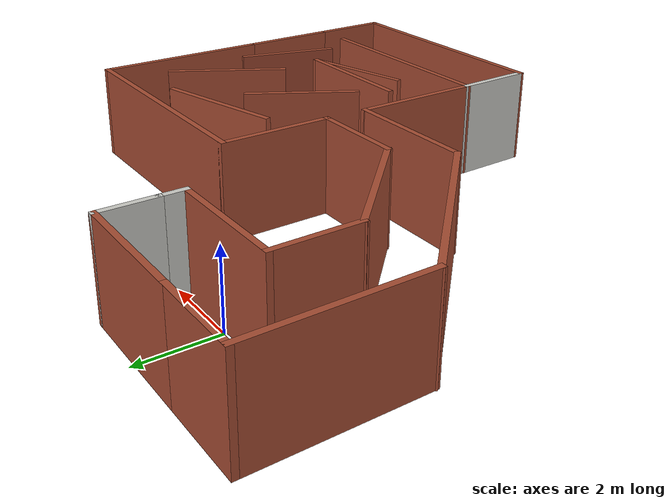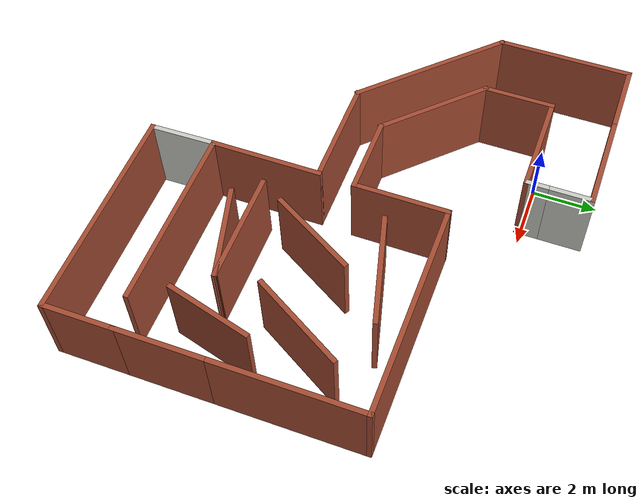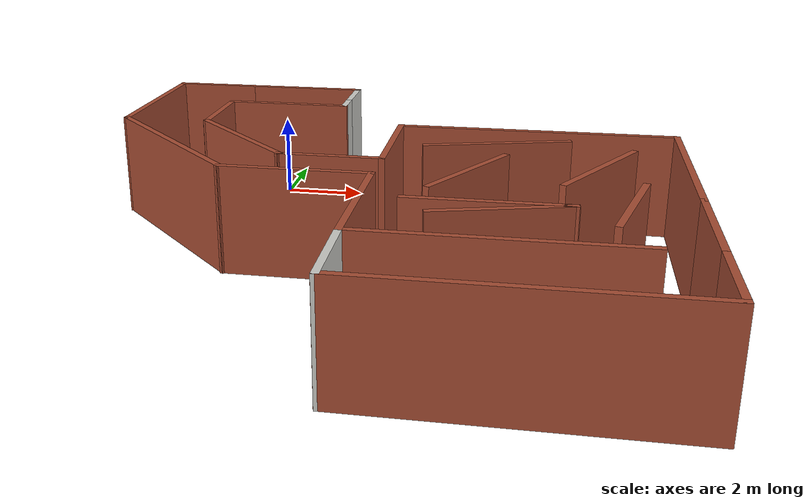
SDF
<?xml version='1.0'?>
<sdf version='1.6'>
  <model name='maze'>
    <pose frame=''>3.18226 -4.70353 0 0 -0 0</pose>
    <link name='Wall_12'>
      <collision name='Wall_12_Collision'>
        <geometry>
          <box>
            <size>3.25 0.15 2.5</size>
          </box>
        </geometry>
        <pose frame=''>0 0 1.25 0 -0 0</pose>
      </collision>
      <visual name='Wall_12_Visual'>
        <pose frame=''>0 0 1.25 0 -0 0</pose>
        <geometry>
          <box>
            <size>3.25 0.15 2.5</size>
          </box>
        </geometry>
        <material>
          <script>
            <uri>file://media/materials/scripts/gazebo.material</uri>
            <name>Gazebo/Bricks</name>
          </script>
          <ambient>1 1 1 1</ambient>
        </material>
        <meta>
          <layer>0</layer>
        </meta>
      </visual>
      <pose frame=''>-3.13226 4.57353 0 0 -0 3.14159</pose>
    </link>
    <link name='Wall_14'>
      <collision name='Wall_14_Collision'>
        <geometry>
          <box>
            <size>2.25 0.15 2.5</size>
          </box>
        </geometry>
        <pose frame=''>0 0 1.25 0 -0 0</pose>
      </collision>
      <visual name='Wall_14_Visual'>
        <pose frame=''>0 0 1.25 0 -0 0</pose>
        <geometry>
          <box>
            <size>2.25 0.15 2.5</size>
          </box>
        </geometry>
        <material>
          <script>
            <uri>file://media/materials/scripts/gazebo.material</uri>
            <name>Gazebo/Bricks</name>
          </script>
          <ambient>1 1 1 1</ambient>
        </material>
        <meta>
          <layer>0</layer>
        </meta>
      </visual>
      <pose frame=''>-4.68226 3.52353 0 0 0 -1.5708</pose>
    </link>
    <link name='Wall_16'>
      <collision name='Wall_16_Collision'>
        <geometry>
          <box>
            <size>2.25 0.15 2.5</size>
          </box>
        </geometry>
        <pose frame=''>0 0 1.25 0 -0 0</pose>
      </collision>
      <visual name='Wall_16_Visual'>
        <pose frame=''>0 0 1.25 0 -0 0</pose>
        <geometry>
          <box>
            <size>2.25 0.15 2.5</size>
          </box>
        </geometry>
        <material>
          <script>
            <uri>file://media/materials/scripts/gazebo.material</uri>
            <name>Gazebo/Bricks</name>
          </script>
          <ambient>1 1 1 1</ambient>
        </material>
        <meta>
          <layer>0</layer>
        </meta>
      </visual>
      <pose frame=''>-5.73226 6.52353 0 0 -0 3.14159</pose>
    </link>
    <link name='Wall_17'>
      <collision name='Wall_17_Collision'>
        <geometry>
          <box>
            <size>4.25 0.15 2.5</size>
          </box>
        </geometry>
        <pose frame=''>0 0 1.25 0 -0 0</pose>
      </collision>
      <visual name='Wall_17_Visual'>
        <pose frame=''>0 0 1.25 0 -0 0</pose>
        <geometry>
          <box>
            <size>4.25 0.15 2.5</size>
          </box>
        </geometry>
        <material>
          <script>
            <uri>file://media/materials/scripts/gazebo.material</uri>
            <name>Gazebo/Bricks</name>
          </script>
          <ambient>1 1 1 1</ambient>
        </material>
        <meta>
          <layer>0</layer>
        </meta>
      </visual>
      <pose frame=''>-6.78226 4.47353 0 0 0 -1.5708</pose>
    </link>
    <link name='Wall_19'>
      <collision name='Wall_19_Collision'>
        <geometry>
          <box>
            <size>5.25 0.15 2.5</size>
          </box>
        </geometry>
        <pose frame=''>0 0 1.25 0 -0 0</pose>
      </collision>
      <visual name='Wall_19_Visual'>
        <pose frame=''>0 0 1.25 0 -0 0</pose>
        <geometry>
          <box>
            <size>5.25 0.15 2.5</size>
          </box>
        </geometry>
        <material>
          <script>
            <uri>file://media/materials/scripts/gazebo.material</uri>
            <name>Gazebo/Bricks</name>
          </script>
          <ambient>1 1 1 1</ambient>
        </material>
        <meta>
          <layer>0</layer>
        </meta>
      </visual>
      <pose frame=''>-4.97914 0.620404 0 0 0 -0.785398</pose>
    </link>
    <link name='Wall_20'>
      <collision name='Wall_20_Collision'>
        <geometry>
          <box>
            <size>3.5 0.15 2.5</size>
          </box>
        </geometry>
        <pose frame=''>0 0 1.25 0 -0 0</pose>
      </collision>
      <visual name='Wall_20_Visual'>
        <pose frame=''>0 0 1.25 0 -0 0</pose>
        <geometry>
          <box>
            <size>3.5 0.15 2.5</size>
          </box>
        </geometry>
        <material>
          <script>
            <uri>file://media/materials/scripts/gazebo.material</uri>
            <name>Gazebo/Bricks</name>
          </script>
          <ambient>1 1 1 1</ambient>
        </material>
        <meta>
          <layer>0</layer>
        </meta>
      </visual>
      <pose frame=''>-1.50101 -1.18272 0 0 -0 0</pose>
    </link>
    <link name='Wall_22'>
      <collision name='Wall_22_Collision'>
        <geometry>
          <box>
            <size>3.75 0.15 2.5</size>
          </box>
        </geometry>
        <pose frame=''>0 0 1.25 0 -0 0</pose>
      </collision>
      <visual name='Wall_22_Visual'>
        <pose frame=''>0 0 1.25 0 -0 0</pose>
        <geometry>
          <box>
            <size>3.75 0.15 2.5</size>
          </box>
        </geometry>
        <material>
          <script>
            <uri>file://media/materials/scripts/gazebo.material</uri>
            <name>Gazebo/Bricks</name>
          </script>
          <ambient>1 1 1 1</ambient>
        </material>
        <meta>
          <layer>0</layer>
        </meta>
      </visual>
      <pose frame=''>-3.40947 1.20073 0 0 0 -0.785398</pose>
    </link>
    <link name='Wall_23'>
      <collision name='Wall_23_Collision'>
        <geometry>
          <box>
            <size>2.5 0.15 2.5</size>
          </box>
        </geometry>
        <pose frame=''>0 0 1.25 0 -0 0</pose>
      </collision>
      <visual name='Wall_23_Visual'>
        <pose frame=''>0 0 1.25 0 -0 0</pose>
        <geometry>
          <box>
            <size>2.5 0.15 2.5</size>
          </box>
        </geometry>
        <material>
          <script>
            <uri>file://media/materials/scripts/gazebo.material</uri>
            <name>Gazebo/Bricks</name>
          </script>
          <ambient>1 1 1 1</ambient>
        </material>
        <meta>
          <layer>0</layer>
        </meta>
      </visual>
      <pose frame=''>-0.961675 -0.072058 0 0 -0 0</pose>
    </link>
    <link name='Wall_24'>
      <collision name='Wall_24_Collision'>
        <geometry>
          <box>
            <size>3 0.15 2.5</size>
          </box>
        </geometry>
        <pose frame=''>0 0 1.25 0 -0 0</pose>
      </collision>
      <visual name='Wall_24_Visual'>
        <pose frame=''>0 0 1.25 0 -0 0</pose>
        <geometry>
          <box>
            <size>3 0.15 2.5</size>
          </box>
        </geometry>
        <material>
          <script>
            <uri>file://media/materials/scripts/gazebo.material</uri>
            <name>Gazebo/Bricks</name>
          </script>
          <ambient>1 1 1 1</ambient>
        </material>
        <meta>
          <layer>0</layer>
        </meta>
      </visual>
      <pose frame=''>0.213325 1.35294 0 0 -0 1.5708</pose>
    </link>
    <link name='Wall_25'>
      <collision name='Wall_25_Collision'>
        <geometry>
          <box>
            <size>6.75 0.15 2.5</size>
          </box>
        </geometry>
        <pose frame=''>0 0 1.25 0 -0 0</pose>
      </collision>
      <visual name='Wall_25_Visual'>
        <pose frame=''>0 0 1.25 0 -0 0</pose>
        <geometry>
          <box>
            <size>6.75 0.15 2.5</size>
          </box>
        </geometry>
        <material>
          <script>
            <uri>file://media/materials/scripts/gazebo.material</uri>
            <name>Gazebo/Bricks</name>
          </script>
          <ambient>1 1 1 1</ambient>
        </material>
        <meta>
          <layer>0</layer>
        </meta>
      </visual>
      <pose frame=''>3.51333 2.77794 0 0 -0 0</pose>
    </link>
    <link name='Wall_26'>
      <collision name='Wall_26_Collision'>
        <geometry>
          <box>
            <size>4.75 0.15 2.5</size>
          </box>
        </geometry>
        <pose frame=''>0 0 1.25 0 -0 0</pose>
      </collision>
      <visual name='Wall_26_Visual'>
        <pose frame=''>0 0 1.25 0 -0 0</pose>
        <geometry>
          <box>
            <size>4.75 0.15 2.5</size>
          </box>
        </geometry>
        <material>
          <script>
            <uri>file://media/materials/scripts/gazebo.material</uri>
            <name>Gazebo/Bricks</name>
          </script>
          <ambient>1 1 1 1</ambient>
        </material>
        <meta>
          <layer>0</layer>
        </meta>
      </visual>
      <pose frame=''>6.81332 0.477942 0 0 0 -1.5708</pose>
    </link>
    <link name='Wall_28'>
      <collision name='Wall_28_Collision'>
        <geometry>
          <box>
            <size>2.75 0.15 2.5</size>
          </box>
        </geometry>
        <pose frame=''>0 0 1.25 0 -0 0</pose>
      </collision>
      <visual name='Wall_28_Visual'>
        <pose frame=''>0 0 1.25 0 -0 0</pose>
        <geometry>
          <box>
            <size>2.75 0.15 2.5</size>
          </box>
        </geometry>
        <material>
          <script>
            <uri>file://media/materials/scripts/gazebo.material</uri>
            <name>Gazebo/Bricks</name>
          </script>
          <ambient>1 1 1 1</ambient>
        </material>
        <meta>
          <layer>0</layer>
        </meta>
      </visual>
      <pose frame=''>6.81332 -3.12206 0 0 0 -1.5708</pose>
    </link>
    <link name='Wall_30'>
      <collision name='Wall_30_Collision'>
        <geometry>
          <box>
            <size>3.5 0.15 2.5</size>
          </box>
        </geometry>
        <pose frame=''>0 0 1.25 0 -0 0</pose>
      </collision>
      <visual name='Wall_30_Visual'>
        <pose frame=''>0 0 1.25 0 -0 0</pose>
        <geometry>
          <box>
            <size>3.5 0.15 2.5</size>
          </box>
        </geometry>
        <material>
          <script>
            <uri>file://media/materials/scripts/gazebo.material</uri>
            <name>Gazebo/Bricks</name>
          </script>
          <ambient>1 1 1 1</ambient>
        </material>
        <meta>
          <layer>0</layer>
        </meta>
      </visual>
      <pose frame=''>0.173985 -2.85772 0 0 0 -1.5708</pose>
    </link>
    <link name='Wall_31'>
      <collision name='Wall_31_Collision'>
        <geometry>
          <box>
            <size>5.75 0.15 2.5</size>
          </box>
        </geometry>
        <pose frame=''>0 0 1.25 0 -0 0</pose>
      </collision>
      <visual name='Wall_31_Visual'>
        <pose frame=''>0 0 1.25 0 -0 0</pose>
        <geometry>
          <box>
            <size>5.75 0.15 2.5</size>
          </box>
        </geometry>
        <material>
          <script>
            <uri>file://media/materials/scripts/gazebo.material</uri>
            <name>Gazebo/Bricks</name>
          </script>
          <ambient>1 1 1 1</ambient>
        </material>
        <meta>
          <layer>0</layer>
        </meta>
      </visual>
      <pose frame=''>2.97398 -4.53272 0 0 -0 0</pose>
    </link>
    <link name='Wall_33'>
      <collision name='Wall_33_Collision'>
        <geometry>
          <box>
            <size>3 0.15 2.5</size>
          </box>
        </geometry>
        <pose frame=''>0 0 1.25 0 -0 0</pose>
      </collision>
      <visual name='Wall_33_Visual'>
        <pose frame=''>0 0 1.25 0 -0 0</pose>
        <geometry>
          <box>
            <size>3 0.15 2.5</size>
          </box>
        </geometry>
        <material>
          <script>
            <uri>file://media/materials/scripts/gazebo.material</uri>
            <name>Gazebo/Bricks</name>
          </script>
          <ambient>1 1 1 1</ambient>
        </material>
        <meta>
          <layer>0</layer>
        </meta>
      </visual>
      <pose frame=''>2.16024 -0.612388 0 0 -0 1.0472</pose>
    </link>
    <link name='Wall_35'>
      <collision name='Wall_35_Collision'>
        <geometry>
          <box>
            <size>3.5 0.15 2.5</size>
          </box>
        </geometry>
        <pose frame=''>0 0 1.25 0 -0 0</pose>
      </collision>
      <visual name='Wall_35_Visual'>
        <pose frame=''>0 0 1.25 0 -0 0</pose>
        <geometry>
          <box>
            <size>3.5 0.15 2.5</size>
          </box>
        </geometry>
        <material>
          <script>
            <uri>file://media/materials/scripts/gazebo.material</uri>
            <name>Gazebo/Bricks</name>
          </script>
          <ambient>1 1 1 1</ambient>
        </material>
        <meta>
          <layer>0</layer>
        </meta>
      </visual>
      <pose frame=''>2.65567 1.57705 0 0 -0 0.261799</pose>
    </link>
    <link name='Wall_37'>
      <collision name='Wall_37_Collision'>
        <geometry>
          <box>
            <size>3.25 0.15 2.5</size>
          </box>
        </geometry>
        <pose frame=''>0 0 1.25 0 -0 0</pose>
      </collision>
      <visual name='Wall_37_Visual'>
        <pose frame=''>0 0 1.25 0 -0 0</pose>
        <geometry>
          <box>
            <size>3.25 0.15 2.5</size>
          </box>
        </geometry>
        <material>
          <script>
            <uri>file://media/materials/scripts/gazebo.material</uri>
            <name>Gazebo/Bricks</name>
          </script>
          <ambient>1 1 1 1</ambient>
        </material>
        <meta>
          <layer>0</layer>
        </meta>
      </visual>
      <pose frame=''>4.94274 0.041187 0 0 0 -2.0944</pose>
    </link>
    <link name='Wall_39'>
      <collision name='Wall_39_Collision'>
        <geometry>
          <box>
            <size>3.5 0.15 2.5</size>
          </box>
        </geometry>
        <pose frame=''>0 0 1.25 0 -0 0</pose>
      </collision>
      <visual name='Wall_39_Visual'>
        <pose frame=''>0 0 1.25 0 -0 0</pose>
        <geometry>
          <box>
            <size>3.5 0.15 2.5</size>
          </box>
        </geometry>
        <material>
          <script>
            <uri>file://media/materials/scripts/gazebo.material</uri>
            <name>Gazebo/Bricks</name>
          </script>
          <ambient>1 1 1 1</ambient>
        </material>
        <meta>
          <layer>0</layer>
        </meta>
      </visual>
      <pose frame=''>2.69274 -2.58647 0 0 -0 0</pose>
    </link>
    <link name='Wall_40'>
      <collision name='Wall_40_Collision'>
        <geometry>
          <box>
            <size>3 0.15 2.5</size>
          </box>
        </geometry>
        <pose frame=''>0 0 1.25 0 -0 0</pose>
      </collision>
      <visual name='Wall_40_Visual'>
        <pose frame=''>0 0 1.25 0 -0 0</pose>
        <geometry>
          <box>
            <size>3 0.15 2.5</size>
          </box>
        </geometry>
        <material>
          <script>
            <uri>file://media/materials/scripts/gazebo.material</uri>
            <name>Gazebo/Bricks</name>
          </script>
          <ambient>1 1 1 1</ambient>
        </material>
        <meta>
          <layer>0</layer>
        </meta>
      </visual>
      <pose frame=''>2.9913 -2.95529 0 0 0 -2.87979</pose>
    </link>
    <link name='Wall_42'>
      <collision name='Wall_42_Collision'>
        <geometry>
          <box>
            <size>2.75 0.15 2.5</size>
          </box>
        </geometry>
        <pose frame=''>0 0 1.25 0 -0 0</pose>
      </collision>
      <visual name='Wall_42_Visual'>
        <pose frame=''>0 0 1.25 0 -0 0</pose>
        <geometry>
          <box>
            <size>2.75 0.15 2.5</size>
          </box>
        </geometry>
        <material>
          <script>
            <uri>file://media/materials/scripts/gazebo.material</uri>
            <name>Gazebo/Bricks</name>
          </script>
          <ambient>1 1 1 1</ambient>
        </material>
        <meta>
          <layer>0</layer>
        </meta>
      </visual>
      <pose frame=''>5.46128 -2.29218 0 0 0 -1.8326</pose>
    </link>
    <link name='Wall_44'>
      <collision name='Wall_44_Collision'>
        <geometry>
          <box>
            <size>2.25 0.15 2.5</size>
          </box>
        </geometry>
        <pose frame=''>0 0 1.25 0 -0 0</pose>
      </collision>
      <visual name='Wall_44_Visual'>
        <pose frame=''>0 0 1.25 0 -0 0</pose>
        <geometry>
          <box>
            <size>2.25 0.15 2.5</size>
          </box>
        </geometry>
        <material>
          <script>
            <uri>file://media/materials/scripts/gazebo.material</uri>
            <name>Gazebo/Bricks</name>
          </script>
          <ambient>1 1 1 1</ambient>
        </material>
        <meta>
          <layer>0</layer>
        </meta>
      </visual>
      <pose frame=''>6.81332 -5.47206 0 0 0 -1.5708</pose>
    </link>
    <link name='Wall_45'>
      <collision name='Wall_45_Collision'>
        <geometry>
          <box>
            <size>6.75 0.15 2.5</size>
          </box>
        </geometry>
        <pose frame=''>0 0 1.25 0 -0 0</pose>
      </collision>
      <visual name='Wall_45_Visual'>
        <pose frame=''>0 0 1.25 0 -0 0</pose>
        <geometry>
          <box>
            <size>6.75 0.15 2.5</size>
          </box>
        </geometry>
        <material>
          <script>
            <uri>file://media/materials/scripts/gazebo.material</uri>
            <name>Gazebo/Bricks</name>
          </script>
          <ambient>1 1 1 1</ambient>
        </material>
        <meta>
          <layer>0</layer>
        </meta>
      </visual>
      <pose frame=''>3.51333 -6.52206 0 0 -0 3.14159</pose>
    </link>
    <link name='Wall_47'>
      <collision name='Wall_47_Collision'>
        <geometry>
          <box>
            <size>2.13973 0.15 2.5</size>
          </box>
        </geometry>
        <pose frame=''>0 0 1.25 0 -0 0</pose>
      </collision>
      <visual name='Wall_47_Visual'>
        <pose frame=''>0 0 1.25 0 -0 0</pose>
        <geometry>
          <box>
            <size>2.13973 0.15 2.5</size>
          </box>
        </geometry>
        <material>
          <script>
            <uri>file://media/materials/scripts/gazebo.material</uri>
            <name>Gazebo/CeilingTiled</name>
          </script>
          <ambient>0.666667 0.0392157 0.121569 1</ambient>
        </material>
        <meta>
          <layer>0</layer>
        </meta>
      </visual>
      <pose frame=''>0.193655 -5.52739 0 0 0 -1.55102</pose>
    </link>
    <link name='Wall_7'>
      <collision name='Wall_7_Collision'>
        <geometry>
          <box>
            <size>3.25 0.15 2.5</size>
          </box>
        </geometry>
        <pose frame=''>0 0 1.25 0 -0 0</pose>
      </collision>
      <visual name='Wall_7_Visual'>
        <pose frame=''>0 0 1.25 0 -0 0</pose>
        <geometry>
          <box>
            <size>3.25 0.15 2.5</size>
          </box>
        </geometry>
        <material>
          <script>
            <uri>file://media/materials/scripts/gazebo.material</uri>
            <name>Gazebo/Bricks</name>
          </script>
          <ambient>1 1 1 1</ambient>
        </material>
        <meta>
          <layer>0</layer>
        </meta>
      </visual>
      <pose frame=''>-3.13226 6.52353 0 0 -0 0</pose>
    </link>
    <link name='Wall_8'>
      <collision name='Wall_8_Collision'>
        <geometry>
          <box>
            <size>1.5 0.15 2.5</size>
          </box>
        </geometry>
        <pose frame=''>0 0 1.25 0 -0 0</pose>
      </collision>
      <visual name='Wall_8_Visual'>
        <pose frame=''>0 0 1.25 0 -0 0</pose>
        <geometry>
          <box>
            <size>1.5 0.15 2.5</size>
          </box>
        </geometry>
        <material>
          <script>
            <uri>file://media/materials/scripts/gazebo.material</uri>
            <name>Gazebo/CeilingTiled</name>
          </script>
          <ambient>0.0627451 0.0627451 1 1</ambient>
        </material>
        <meta>
          <layer>0</layer>
        </meta>
      </visual>
      <pose frame=''>-1.58226 5.84853 0 0 0 -1.5708</pose>
    </link>
    <link name='Wall_9'>
      <collision name='Wall_9_Collision'>
        <geometry>
          <box>
            <size>0.75 0.15 2.5</size>
          </box>
        </geometry>
        <pose frame=''>0 0 1.25 0 -0 0</pose>
      </collision>
      <visual name='Wall_9_Visual'>
        <pose frame=''>0 0 1.25 0 -0 0</pose>
        <geometry>
          <box>
            <size>0.75 0.15 2.5</size>
          </box>
        </geometry>
        <material>
          <script>
            <uri>file://media/materials/scripts/gazebo.material</uri>
            <name>Gazebo/CeilingTiled</name>
          </script>
          <ambient>0.0627451 0.0627451 1 1</ambient>
        </material>
        <meta>
          <layer>0</layer>
        </meta>
      </visual>
      <pose frame=''>-1.58226 4.87353 0 0 0 -1.5708</pose>
    </link>
    <static>1</static>
  </model>
</sdf>
